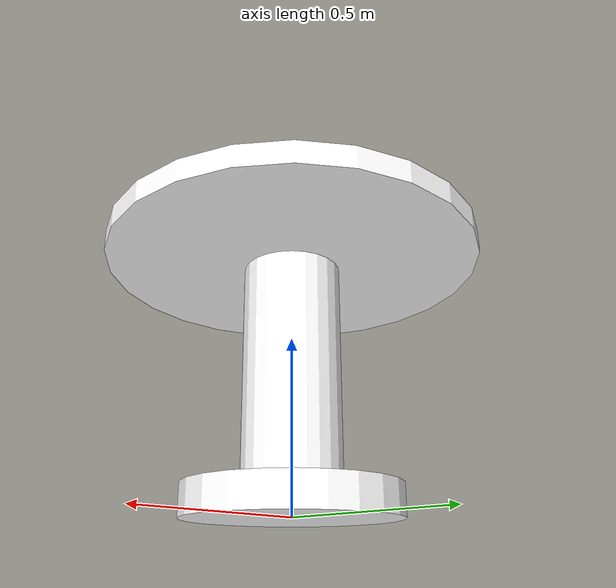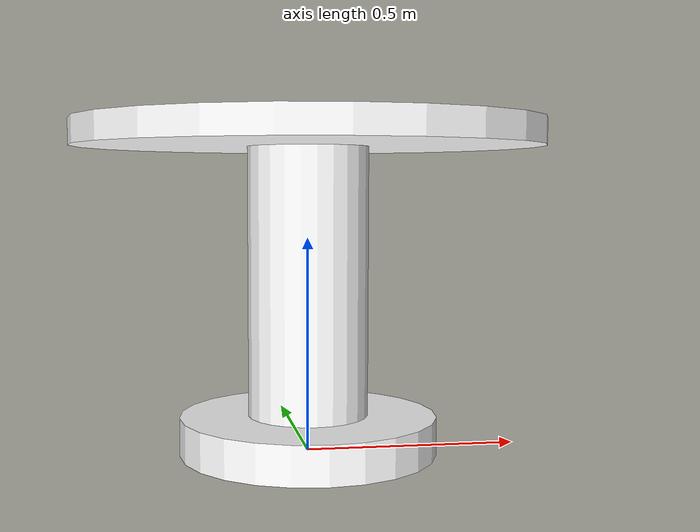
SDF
<?xml version="1.0"?>
<sdf version="1.9">
  <model name="round_table">
    <static>true</static>
    <link name="body">

      <collision name="top_collision">
        <pose>0 0 0.74 0 0 0</pose>
        <geometry><cylinder><radius>0.54</radius><length>0.06</length></cylinder></geometry>
      </collision>
      <visual name="top_visual">
        <pose>0 0 0.74 0 0 0</pose>
        <geometry><cylinder><radius>0.54</radius><length>0.06</length></cylinder></geometry>
        <material>
          <ambient>1 1 1 1</ambient>
          <diffuse>1 1 1 1</diffuse>
          <specular>0.05 0.05 0.05 1</specular>
          <pbr>
            <metal>
              <albedo_map>materials/textures/wood_albedo.png</albedo_map>
              <normal_map>materials/textures/wood_normal.png</normal_map>
              <roughness_map>materials/textures/wood_roughness.png</roughness_map>
              <metalness>0.0</metalness>
            </metal>
          </pbr>
        </material>
      </visual>

      <collision name="pedestal_collision">
        <pose>0 0 0.38 0 0 0</pose>
        <geometry><cylinder><radius>0.14</radius><length>0.72</length></cylinder></geometry>
      </collision>
      <visual name="pedestal_visual">
        <pose>0 0 0.38 0 0 0</pose>
        <geometry><cylinder><radius>0.14</radius><length>0.72</length></cylinder></geometry>
        <material><ambient>1 1 1 1</ambient><diffuse>1 1 1 1</diffuse><specular>0.05 0.05 0.05 1</specular><pbr><metal><albedo_map>materials/textures/wood_albedo.png</albedo_map><normal_map>materials/textures/wood_normal.png</normal_map><roughness_map>materials/textures/wood_roughness.png</roughness_map><metalness>0.0</metalness></metal></pbr></material>
      </visual>

      <collision name="base_collision">
        <pose>0 0 0.04 0 0 0</pose>
        <geometry><cylinder><radius>0.30</radius><length>0.09</length></cylinder></geometry>
      </collision>
      <visual name="base_visual">
        <pose>0 0 0.04 0 0 0</pose>
        <geometry><cylinder><radius>0.30</radius><length>0.09</length></cylinder></geometry>
        <material><ambient>1 1 1 1</ambient><diffuse>1 1 1 1</diffuse><specular>0.05 0.05 0.05 1</specular><pbr><metal><albedo_map>materials/textures/wood_albedo.png</albedo_map><normal_map>materials/textures/wood_normal.png</normal_map><roughness_map>materials/textures/wood_roughness.png</roughness_map><metalness>0.0</metalness></metal></pbr></material>
      </visual>

    </link>
  </model>
</sdf>
